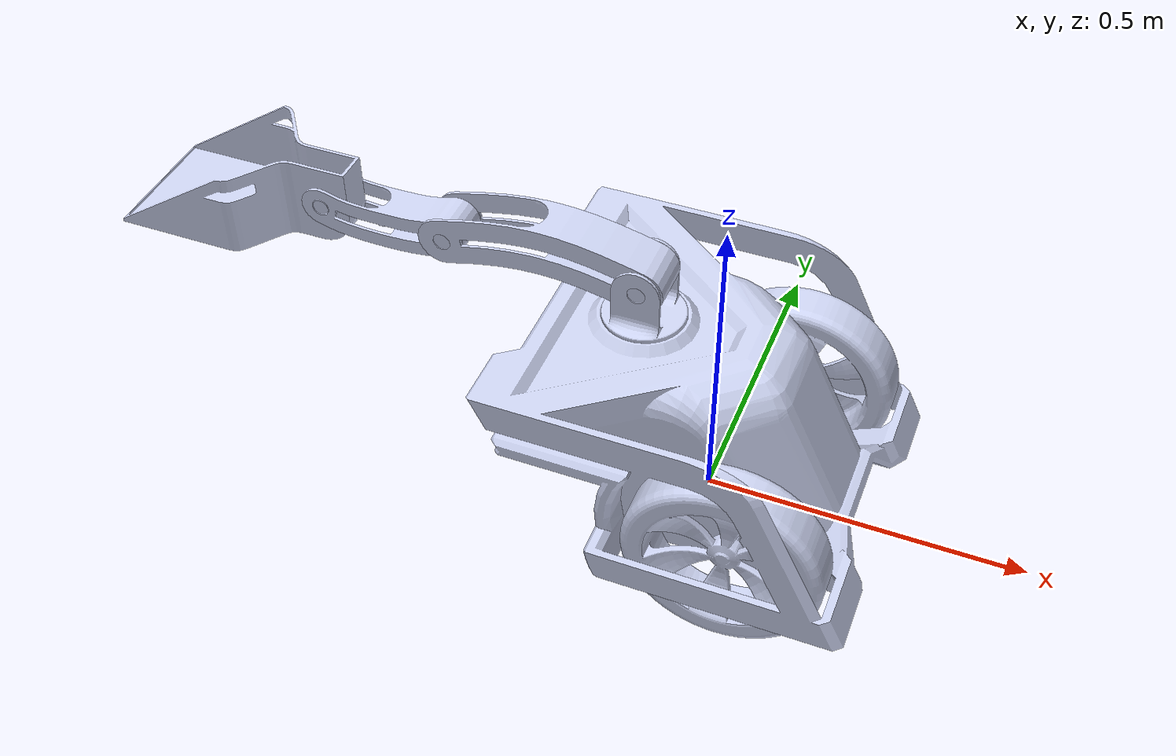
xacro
<?xml version="1.0"?>
<robot
  name="mobilearm" xmlns:xacro="http://ros.org/wiki/xacro">

<!-- # Add this before base link -->
  <link name="dummy_link"></link>

  <link
    name="base_link">
    <inertial>
      <origin
        xyz="-0.045448 0.00058284 0.17779"
        rpy="0 0 0" />
      <mass
        value="34.758" />
      <inertia
        ixx="0.62775"
        ixy="4.0881E-05"
        ixz="0.11977"
        iyy="0.78435"
        iyz="-1.5708E-05"
        izz="0.96649" />
    </inertial>
    <visual>
      <origin
        xyz="0 0 0"
        rpy="0 0 0" />
      <geometry>
        <mesh
          filename="package://mobilearm/meshes/base_link.STL" />
      </geometry>
      <material
        name="">
        <color
          rgba="0.79216 0.81961 0.93333 1" />
      </material>
    </visual>
    <collision>
      <origin
        xyz="0 0 0"
        rpy="0 0 0" />
      <geometry>
        <mesh
          filename="package://mobilearm/meshes/base_link.STL" />
      </geometry>
    </collision>
  </link>

<!-- # Add this after base link -->
  <joint name="dummy_joint" type="fixed">
      <origin rpy="0 0 0" xyz="0 0 0" />
      <parent link="dummy_link"/>
      <child link="base_link"/>
  </joint>

  <link
    name="fl_wheel_link">
    <inertial>
      <origin
        xyz="-0.027181 -4.1417E-16 -1.3184E-16"
        rpy="0 0 0" />
      <mass
        value="2.632" />
      <inertia
        ixx="0.04377"
        ixy="-2.8081E-17"
        ixz="-1.1886E-17"
        iyy="0.023024"
        iyz="-1.1907E-18"
        izz="0.023024" />
    </inertial>
    <visual>
      <origin
        xyz="0 0 0"
        rpy="0 0 0" />
      <geometry>
        <mesh
          filename="package://mobilearm/meshes/fl_wheel_link.STL" />
      </geometry>
      <material
        name="">
        <color
          rgba="0.79216 0.81961 0.93333 1" />
      </material>
    </visual>
    <collision>
      <origin
        xyz="0 0 0"
        rpy="0 0 0" />
      <geometry>
        <mesh
          filename="package://mobilearm/meshes/fl_wheel_link.STL" />
      </geometry>
    </collision>
  </link>
  <joint
    name="fl_wheel_joint"
    type="continuous">
    <origin
      xyz="0.0855424170995859 0.172671545820042 0.0887956872982283"
      rpy="1.5707963267949 0 -1.5707963267949" />
    <parent
      link="base_link" />
    <child
      link="fl_wheel_link" />
    <axis
      xyz="-1 0 0" />
  </joint>
  <link
    name="fr_wheel_link">
    <inertial>
      <origin
        xyz="-2.4286E-16 3.9682E-16 0.027181"
        rpy="0 0 0" />
      <mass
        value="2.632" />
      <inertia
        ixx="0.023024"
        ixy="8.2369E-17"
        ixz="1.2563E-17"
        iyy="0.023024"
        iyz="-2.6693E-17"
        izz="0.04377" />
    </inertial>
    <visual>
      <origin
        xyz="0 0 0"
        rpy="0 0 0" />
      <geometry>
        <mesh
          filename="package://mobilearm/meshes/fr_wheel_link.STL" />
      </geometry>
      <material
        name="">
        <color
          rgba="0.79216 0.81961 0.93333 1" />
      </material>
    </visual>
    <collision>
      <origin
        xyz="0 0 0"
        rpy="0 0 0" />
      <geometry>
        <mesh
          filename="package://mobilearm/meshes/fr_wheel_link.STL" />
      </geometry>
    </collision>
  </link>
  <joint
    name="fr_wheel_joint"
    type="continuous">
    <origin
      xyz="0.0855424170995859 -0.171498454179958 0.0887956872982283"
      rpy="1.5707963267949 0 0" />
    <parent
      link="base_link" />
    <child
      link="fr_wheel_link" />
    <axis
      xyz="0 0 1" />
  </joint>
  <link
    name="caster_steering_link">
    <inertial>
      <origin
        xyz="-0.015554 -0.050212 -0.021872"
        rpy="0 0 0" />
      <mass
        value="0.1049" />
      <inertia
        ixx="0.00024545"
        ixy="-5.4866E-05"
        ixz="-1.1598E-05"
        iyy="0.00010985"
        iyz="-7.7153E-05"
        izz="0.00023739" />
    </inertial>
    <visual>
      <origin
        xyz="0 0 0"
        rpy="0 0 0" />
      <geometry>
        <mesh
          filename="package://mobilearm/meshes/caster_steering_link.STL" />
      </geometry>
      <material
        name="">
        <color
          rgba="0.79216 0.81961 0.93333 1" />
      </material>
    </visual>
    <collision>
      <origin
        xyz="0 0 0"
        rpy="0 0 0" />
      <geometry>
        <mesh
          filename="package://mobilearm/meshes/caster_steering_link.STL" />
      </geometry>
    </collision>
  </link>
  <joint
    name="caster_steering_joint"
    type="continuous">
    <origin
      xyz="-0.204564404538145 0.000586545820041112 0.092302154967211"
      rpy="1.5707963267949 0 0" />
    <parent
      link="base_link" />
    <child
      link="caster_steering_link" />
    <axis
      xyz="0 1 0" />
  </joint>
  <link
    name="caster_wheel_link">
    <inertial>
      <origin
        xyz="2.22044604925031E-16 6.93889390390723E-17 2.46330733588707E-16"
        rpy="0 0 0" />
      <mass
        value="0.342625566923817" />
      <inertia
        ixx="0.000635022853102609"
        ixy="-1.22660123963122E-19"
        ixz="-0.000166314971068249"
        iyy="0.000401151285704393"
        iyz="1.37432861193586E-19"
        izz="0.000519424190397995" />
    </inertial>
    <visual>
      <origin
        xyz="0 0 0"
        rpy="0 0 0" />
      <geometry>
        <mesh
          filename="package://mobilearm/meshes/caster_wheel_link.STL" />
      </geometry>
      <material
        name="">
        <color
          rgba="0.792156862745098 0.819607843137255 0.933333333333333 1" />
      </material>
    </visual>
    <collision>
      <origin
        xyz="0 0 0"
        rpy="0 0 0" />
      <geometry>
        <mesh
          filename="package://mobilearm/meshes/caster_wheel_link.STL" />
      </geometry>
    </collision>
  </link>
  <joint
    name="caster_wheel_joint"
    type="continuous">
    <origin
      xyz="-0.0281460805399568 -0.0920750000000002 -0.039578926236865"
      rpy="0 0 0" />
    <parent
      link="caster_steering_link" />
    <child
      link="caster_wheel_link" />
    <axis
      xyz="-0.814944954891572 0 0.579538368442309" />
  </joint>
  <link
    name="arm_base_link">
    <inertial>
      <origin
        xyz="-2.57901941051741E-05 0.0132552322045653 2.20102892162233E-09"
        rpy="0 0 0" />
      <mass
        value="0.306924619891199" />
      <inertia
        ixx="0.000564283838712626"
        ixy="4.77513581324576E-07"
        ixz="-2.64534906819143E-10"
        iyy="0.000624476724758926"
        iyz="-2.20937960001254E-10"
        izz="0.000464836817681594" />
    </inertial>
    <visual>
      <origin
        xyz="0 0 0"
        rpy="0 0 0" />
      <geometry>
        <mesh
          filename="package://mobilearm/meshes/arm_base_link.STL" />
      </geometry>
      <material
        name="">
        <color
          rgba="0.792156862745098 0.819607843137255 0.933333333333333 1" />
      </material>
    </visual>
    <collision>
      <origin
        xyz="0 0 0"
        rpy="0 0 0" />
      <geometry>
        <mesh
          filename="package://mobilearm/meshes/arm_base_link.STL" />
      </geometry>
    </collision>
  </link>
  <joint
    name="arm_base_joint"
    type="revolute">
    <origin
      xyz="-0.116265372914888 0.000586545820041961 0.31469370128076"
      rpy="1.5707963267949 0 0" />
    <parent
      link="base_link" />
    <child
      link="arm_base_link" />
    <axis
      xyz="0 1 0" />
    <limit
      lower="-10.42"
      upper="10.42"
      effort="5"
      velocity="5" />
  </joint>
  <link
    name="arm_shoulder_link">
    <inertial>
      <origin
        xyz="-0.107585980315301 0.0127027238235902 0.0393688564782083"
        rpy="0 0 0" />
      <mass
        value="0.425781076841082" />
      <inertia
        ixx="0.000723434497409713"
        ixy="0.000130954228938278"
        ixz="-2.07757094423152E-08"
        iyy="0.00485977948124"
        iyz="2.00545470743252E-09"
        izz="0.00486634901098901" />
    </inertial>
    <visual>
      <origin
        xyz="0 0 0"
        rpy="0 0 0" />
      <geometry>
        <mesh
          filename="package://mobilearm/meshes/arm_shoulder_link.STL" />
      </geometry>
      <material
        name="">
        <color
          rgba="0.792156862745098 0.819607843137255 0.933333333333333 1" />
      </material>
    </visual>
    <collision>
      <origin
        xyz="0 0 0"
        rpy="0 0 0" />
      <geometry>
        <mesh
          filename="package://mobilearm/meshes/arm_shoulder_link.STL" />
      </geometry>
    </collision>
  </link>
  <joint
    name="arm_shoulder_joint"
    type="revolute">
    <origin
      xyz="0.00127 0.07366 -0.03937"
      rpy="0 0 0" />
    <parent
      link="arm_base_link" />
    <child
      link="arm_shoulder_link" />
    <axis
      xyz="0 0 -1" />
    <limit
      lower="-10.42"
      upper="10.42"
      effort="5"
      velocity="5" />
  </joint>
  <link
    name="arm_elbow_link">
    <inertial>
      <origin
        xyz="-0.0700938290895637 -0.00663021674985753 0.0330262353866725"
        rpy="0 0 0" />
      <mass
        value="0.216322084241014" />
      <inertia
        ixx="0.000243507176165999"
        ixy="-2.56629187680897E-05"
        ixz="4.23390520334268E-08"
        iyy="0.00127534950503716"
        iyz="-3.13443560210142E-09"
        izz="0.00126560879258571" />
    </inertial>
    <visual>
      <origin
        xyz="0 0 0"
        rpy="0 0 0" />
      <geometry>
        <mesh
          filename="package://mobilearm/meshes/arm_elbow_link.STL" />
      </geometry>
      <material
        name="">
        <color
          rgba="0.792156862745098 0.819607843137255 0.933333333333333 1" />
      </material>
    </visual>
    <collision>
      <origin
        xyz="0 0 0"
        rpy="0 0 0" />
      <geometry>
        <mesh
          filename="package://mobilearm/meshes/arm_elbow_link.STL" />
      </geometry>
    </collision>
  </link>
  <joint
    name="arm_elbow_joint"
    type="revolute">
    <origin
      xyz="-0.3048 0 0.00635000000000006"
      rpy="0 0 0" />
    <parent
      link="arm_shoulder_link" />
    <child
      link="arm_elbow_link" />
    <axis
      xyz="0 0 -1" />
    <limit
      lower="-10.42"
      upper="10.42"
      effort="5"
      velocity="5" />
  </joint>
  <link
    name="arm_wrist_link">
    <inertial>
      <origin
        xyz="-0.122291575367972 -0.0282391014559717 0.0279400100137721"
        rpy="0 0 0" />
      <mass
        value="0.670549172003677" />
      <inertia
        ixx="0.00365726702375741"
        ixy="-0.00132282579907981"
        ixz="-1.53785293492331E-10"
        iyy="0.00897433588406445"
        iyz="-3.97825385094693E-10"
        izz="0.0074401806695064" />
    </inertial>
    <visual>
      <origin
        xyz="0 0 0"
        rpy="0 0 0" />
      <geometry>
        <mesh
          filename="package://mobilearm/meshes/arm_wrist_link.STL" />
      </geometry>
      <material
        name="">
        <color
          rgba="0.792156862745098 0.819607843137255 0.933333333333333 1" />
      </material>
    </visual>
    <collision>
      <origin
        xyz="0 0 0"
        rpy="0 0 0" />
      <geometry>
        <mesh
          filename="package://mobilearm/meshes/arm_wrist_link.STL" />
      </geometry>
    </collision>
  </link>
  <joint
    name="arm_wrist_joint"
    type="revolute">
    <origin
      xyz="-0.203221215421091 0 0.00508000000000013"
      rpy="0 0 0" />
    <parent
      link="arm_elbow_link" />
    <child
      link="arm_wrist_link" />
    <axis
      xyz="0 0 -1" />
    <limit
      lower="0"
      upper="0"
      effort="5"
      velocity="5" />
  </joint>

  <ros2_control name="GazeboSystem" type="system">
    <hardware>
        <plugin>gazebo_ros2_control/GazeboSystem</plugin>
    </hardware>

  <!-- # Velocity Controllers -->
  <joint name="fl_wheel_joint">
      <command_interface name="velocity">
          <param name="min">-5.0</param>
          <param name="max">5.0</param>
      </command_interface>
      <state_interface name="position"/>
      <state_interface name="velocity"/>
  </joint>

  <joint name="fr_wheel_joint">
      <command_interface name="velocity">
          <param name="min">-5.0</param>
          <param name="max">5.0</param>
      </command_interface>
      <state_interface name="position"/>
      <state_interface name="velocity"/>
  </joint>

 <joint name="arm_base_joint">
      <command_interface name="velocity">
          <param name="min">-5.0</param>
          <param name="max">5.0</param>
      </command_interface>
      <state_interface name="position"/>
      <state_interface name="velocity"/>
  </joint>

  <joint name="arm_shoulder_joint">
      <command_interface name="velocity">
          <param name="min">-5.0</param>
          <param name="max">5.0</param>
      </command_interface>
      <state_interface name="position"/>
      <state_interface name="velocity"/>
  </joint>

 <joint name="arm_elbow_joint">
      <command_interface name="velocity">
          <param name="min">-5.0</param>
          <param name="max">5.0</param>
      </command_interface>
      <state_interface name="position"/>
      <state_interface name="velocity"/>
  </joint>

  <joint name="arm_wrist_joint">
      <command_interface name="velocity">
          <param name="min">-5.0</param>
          <param name="max">5.0</param>
      </command_interface>
      <state_interface name="position"/>
      <state_interface name="velocity"/>
  </joint>

 <joint name="caster_steering_joint">
      <command_interface name="velocity">
          <param name="min">-5.0</param>
          <param name="max">5.0</param>
      </command_interface>
      <state_interface name="position"/>
      <state_interface name="velocity"/>
  </joint>

  <joint name="caster_wheel_joint">
      <command_interface name="velocity">
          <param name="min">-5.0</param>
          <param name="max">5.0</param>
      </command_interface>
      <state_interface name="position"/>
      <state_interface name="velocity"/>
  </joint>

  <!-- # Position Controller -->
  <joint name="arm_base_joint">
      <command_interface name="position">
          <param name="min">-10.42</param>
          <param name="max">10.42</param>
      </command_interface>
      <state_interface name="position"/>
      <state_interface name="velocity"/>
  </joint>

  <joint name="arm_shoulder_joint">
      <command_interface name="position">
          <param name="min">-10.42</param>
          <param name="max">10.42</param>
      </command_interface>
      <state_interface name="position"/>
      <state_interface name="velocity"/>
  </joint>

  <joint name="arm_elbow_joint">
      <command_interface name="position">
          <param name="min">-10.42</param>
          <param name="max">10.42</param>
      </command_interface>
      <state_interface name="position"/>
      <state_interface name="velocity"/>
  </joint>

  <joint name="arm_wrist_joint">
      <command_interface name="position">
          <param name="min">-10.42</param>
          <param name="max">10.42</param>
      </command_interface>
      <state_interface name="position"/>
      <state_interface name="velocity"/>
  </joint>

  </ros2_control>

<gazebo>
  <plugin filename="libgazebo_ros2_control.so" name="gazebo_ros2_control">
    <parameters>$(find mobilearm)/config/control.yaml</parameters>
  </plugin>
</gazebo>

<gazebo reference="base_link">
  <sensor name="lidar" type="ray">
    <pose>0.0 0.0 0.0 0.0 0.0 0.0</pose>
    <always_on>true</always_on>
    <visualize>true</visualize>
    <update_rate>5</update_rate>
    <ray>
      <scan>
        <horizontal>
          <samples>360</samples>
          <resolution>1.00000</resolution>
          <min_angle>0.000000</min_angle>
          <max_angle>6.280000</max_angle>
        </horizontal>
      </scan>
      <range>
        <min>0.120000</min>
        <max>3.5</max>
        <resolution>0.015000</resolution>
      </range>
      <noise>
        <type>gaussian</type>
        <mean>0.0</mean>
        <stddev>0.01</stddev>
      </noise>
    </ray>
    <plugin name="scan" filename="libgazebo_ros_ray_sensor.so">
      <ros>
        <remapping>~/out:=scan</remapping>
      </ros>
      <output_type>sensor_msgs/LaserScan</output_type>
      <frame_name>lidar_link</frame_name>
    </plugin>
  </sensor>
  </gazebo>

</robot>
